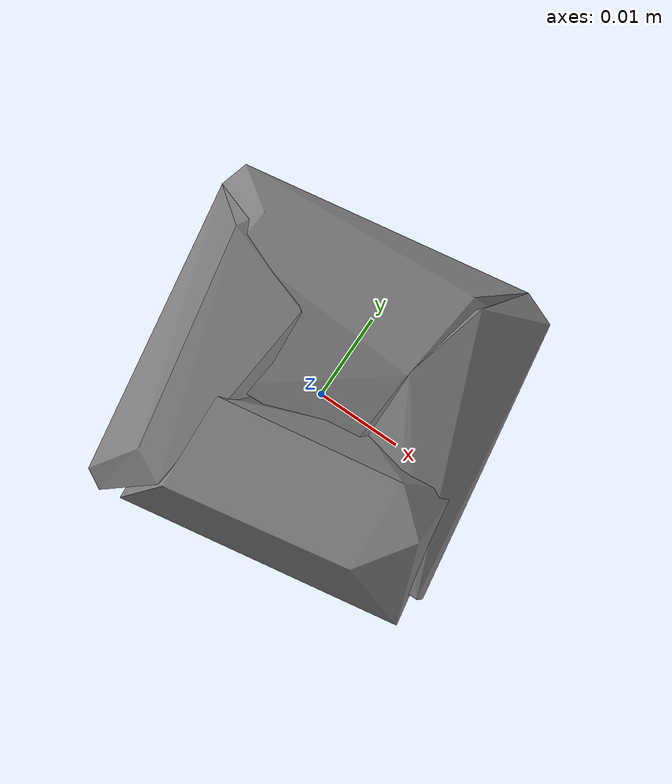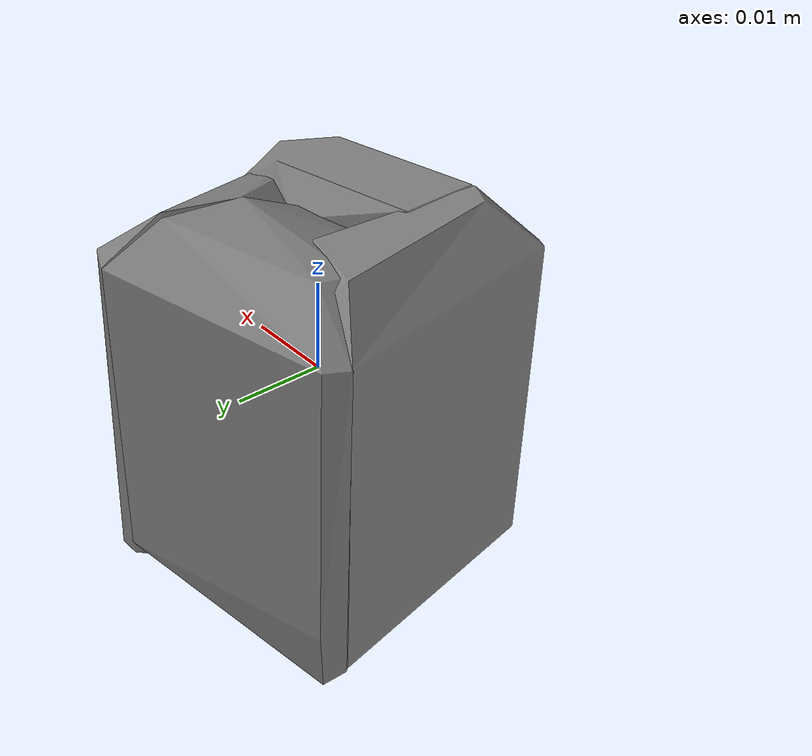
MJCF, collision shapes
<mujoco model="b_lego_duplo">
  <compiler angle="radian" />

  <asset>
    <mesh name="b_lego_duplo_visual_mesh" file="b_lego_duplo/textured.obj" />
    <mesh name="b_lego_duplo_collision_mesh_0" file="b_lego_duplo/textured_coacd_0.stl" />
    <mesh name="b_lego_duplo_collision_mesh_1" file="b_lego_duplo/textured_coacd_1.stl" />
    <mesh name="b_lego_duplo_collision_mesh_2" file="b_lego_duplo/textured_coacd_2.stl" />
    <mesh name="b_lego_duplo_collision_mesh_3" file="b_lego_duplo/textured_coacd_3.stl" />
    <texture name="b_lego_duplo_texture" type="2d" file="b_lego_duplo/texture_map.png" />
    <material name="b_lego_duplo_material" texture="b_lego_duplo_texture" />
  </asset>

  <worldbody>
    <body name="b_lego_duplo" pos="0 0 0" euler="0 0 0">
      <freejoint name="b_lego_duplo_joint" />
      <geom name="b_lego_duplo_visual_geom" type="mesh" mesh="b_lego_duplo_visual_mesh" material="b_lego_duplo_material" pos="0.02015195399517096 0.020701169043825227 -0.023741940675427498" euler="0 0 0" contype="0" conaffinity="0" group="0" />
      <geom name="b_lego_duplo_collision_geom_0" type="mesh" mesh="b_lego_duplo_collision_mesh_0" pos="0.02015195399517096 0.020701169043825227 -0.023741940675427498" euler="0 0 0" contype="1" conaffinity="1" group="3" />
      <geom name="b_lego_duplo_collision_geom_1" type="mesh" mesh="b_lego_duplo_collision_mesh_1" pos="0.02015195399517096 0.020701169043825227 -0.023741940675427498" euler="0 0 0" contype="1" conaffinity="1" group="3" />
      <geom name="b_lego_duplo_collision_geom_2" type="mesh" mesh="b_lego_duplo_collision_mesh_2" pos="0.02015195399517096 0.020701169043825227 -0.023741940675427498" euler="0 0 0" contype="1" conaffinity="1" group="3" />
      <geom name="b_lego_duplo_collision_geom_3" type="mesh" mesh="b_lego_duplo_collision_mesh_3" pos="0.02015195399517096 0.020701169043825227 -0.023741940675427498" euler="0 0 0" contype="1" conaffinity="1" group="3" />
      <inertial pos="0 0 0" euler="0 0 0" mass="0.0372" diaginertia="0.001 0.001 0.001" />
    </body>
  </worldbody>
</mujoco>
